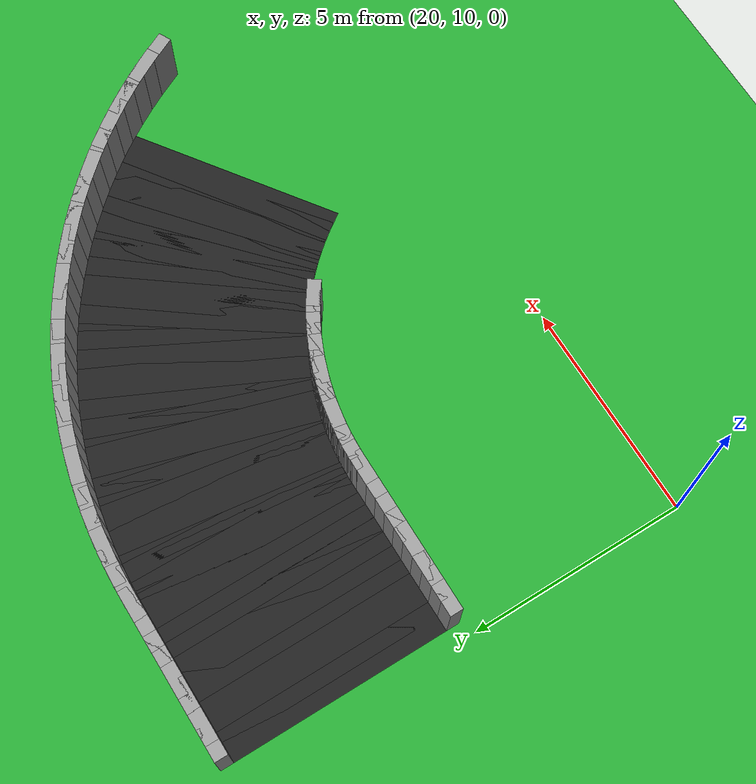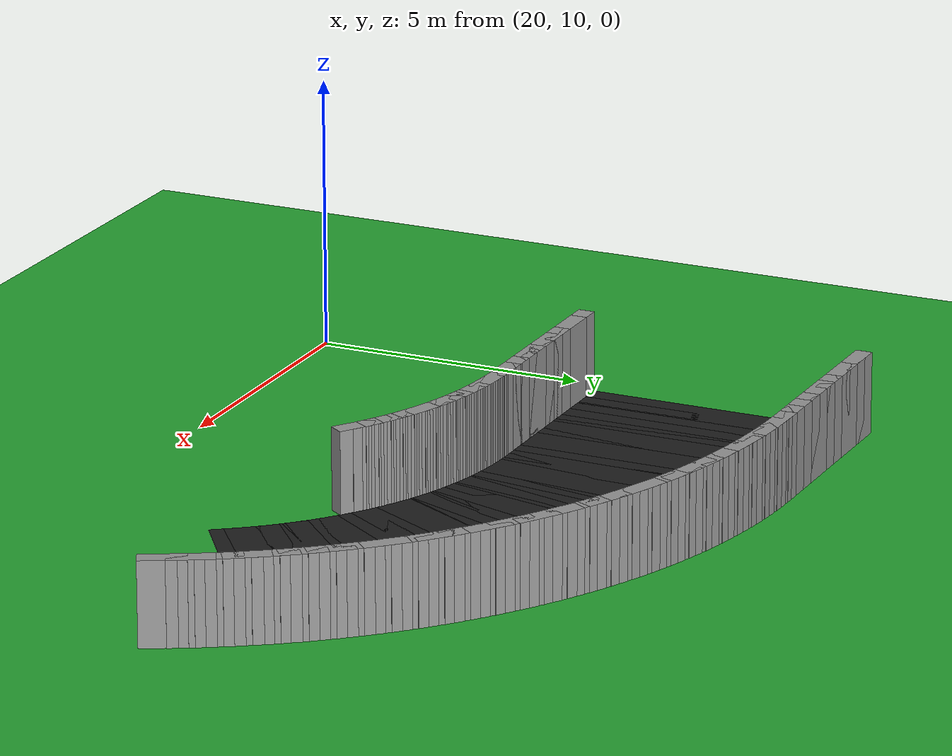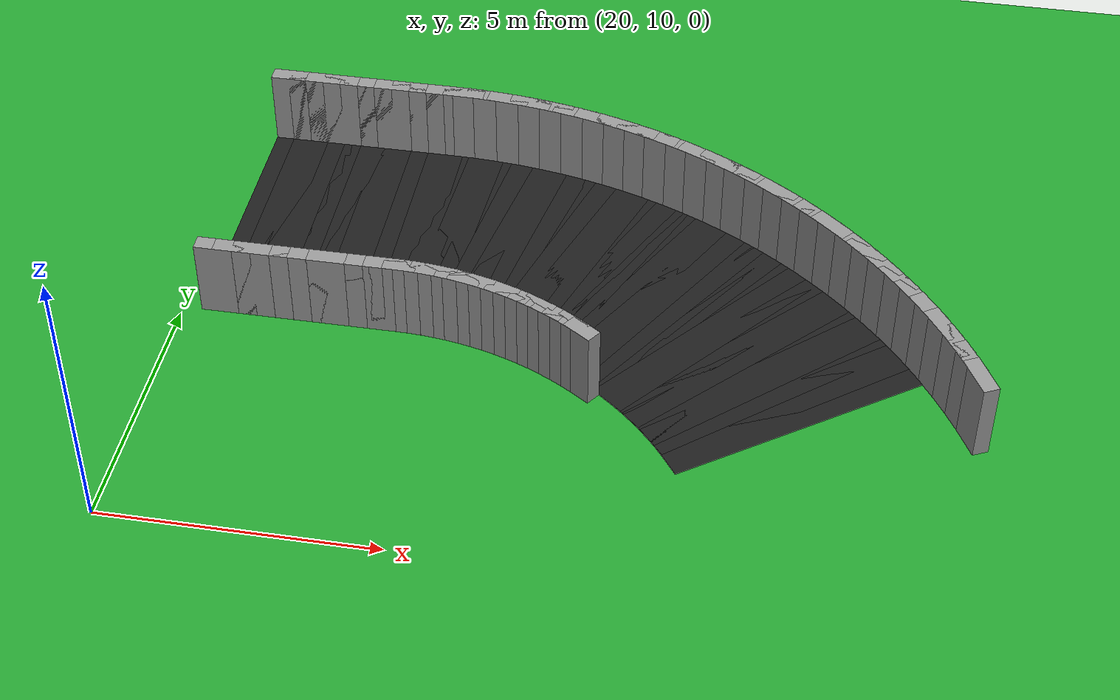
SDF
<sdf version="1.6">
 <world name="loop_stadium">
  <include><uri>model://sun</uri></include>
  <model name="ground_plane">
   <static>true</static>
   <link name="link">
    <collision name="collision">
     <surface><friction><ode><mu>100</mu><mu2>50</mu2></ode></friction></surface>
     <geometry><plane><normal>0 0 1</normal><size>120 120</size></plane></geometry>
    </collision>
    <visual name="visual">
     <geometry><plane><normal>0 0 1</normal><size>120 120</size></plane></geometry>
     <material>
      <script><uri>file://media/materials/scripts/gazebo.material</uri><name>Gazebo/Green</name></script>
     </material>
    </visual>
   </link>
  </model>
  <model name="curbR_121">
   <static>true</static>
   <pose>34.409 14.228 0.750 0 0 2.03622</pose>
   <link name="link">
    <collision name="collision"><geometry><box><size>0.812 0.300 1.500</size></box></geometry></collision>
    <visual name="visual">
     <geometry><box><size>0.812 0.300 1.500</size></box></geometry>
     <material>
      <script><uri>file://media/materials/scripts/gazebo.material</uri><name>Gazebo/Grey</name></script>
     </material>
    </visual>
   </link>
  </model>
  <model name="curbR_122">
   <static>true</static>
   <pose>34.199 14.628 0.750 0 0 2.07500</pose>
   <link name="link">
    <collision name="collision"><geometry><box><size>0.812 0.300 1.500</size></box></geometry></collision>
    <visual name="visual">
     <geometry><box><size>0.812 0.300 1.500</size></box></geometry>
     <material>
      <script><uri>file://media/materials/scripts/gazebo.material</uri><name>Gazebo/Grey</name></script>
     </material>
    </visual>
   </link>
  </model>
  <model name="curbR_123">
   <static>true</static>
   <pose>33.973 15.019 0.750 0 0 2.11379</pose>
   <link name="link">
    <collision name="collision"><geometry><box><size>0.812 0.300 1.500</size></box></geometry></collision>
    <visual name="visual">
     <geometry><box><size>0.812 0.300 1.500</size></box></geometry>
     <material>
      <script><uri>file://media/materials/scripts/gazebo.material</uri><name>Gazebo/Grey</name></script>
     </material>
    </visual>
   </link>
  </model>
  <model name="curbR_124">
   <static>true</static>
   <pose>33.732 15.401 0.750 0 0 2.15257</pose>
   <link name="link">
    <collision name="collision"><geometry><box><size>0.812 0.300 1.500</size></box></geometry></collision>
    <visual name="visual">
     <geometry><box><size>0.812 0.300 1.500</size></box></geometry>
     <material>
      <script><uri>file://media/materials/scripts/gazebo.material</uri><name>Gazebo/Grey</name></script>
     </material>
    </visual>
   </link>
  </model>
  <model name="asphalt_125">
   <static>true</static>
   <pose>31.321 14.233 0.005 0 0 2.19136</pose>
   <link name="link">
    <visual name="visual">
     <geometry><box><size>0.709 5.000 0.010</size></box></geometry>
     <material>
      <script><uri>file://media/materials/scripts/gazebo.material</uri><name>Gazebo/Black</name></script>
     </material>
    </visual>
   </link>
  </model>
  <model name="curbR_125">
   <static>true</static>
   <pose>33.477 15.774 0.750 0 0 2.19136</pose>
   <link name="link">
    <collision name="collision"><geometry><box><size>0.812 0.300 1.500</size></box></geometry></collision>
    <visual name="visual">
     <geometry><box><size>0.812 0.300 1.500</size></box></geometry>
     <material>
      <script><uri>file://media/materials/scripts/gazebo.material</uri><name>Gazebo/Grey</name></script>
     </material>
    </visual>
   </link>
  </model>
  <model name="asphalt_126">
   <static>true</static>
   <pose>31.113 14.513 0.005 0 0 2.23014</pose>
   <link name="link">
    <visual name="visual">
     <geometry><box><size>0.709 5.000 0.010</size></box></geometry>
     <material>
      <script><uri>file://media/materials/scripts/gazebo.material</uri><name>Gazebo/Black</name></script>
     </material>
    </visual>
   </link>
  </model>
  <model name="curbR_126">
   <static>true</static>
   <pose>33.207 16.136 0.750 0 0 2.23014</pose>
   <link name="link">
    <collision name="collision"><geometry><box><size>0.812 0.300 1.500</size></box></geometry></collision>
    <visual name="visual">
     <geometry><box><size>0.812 0.300 1.500</size></box></geometry>
     <material>
      <script><uri>file://media/materials/scripts/gazebo.material</uri><name>Gazebo/Grey</name></script>
     </material>
    </visual>
   </link>
  </model>
  <model name="asphalt_127">
   <static>true</static>
   <pose>30.894 14.785 0.005 0 0 2.26893</pose>
   <link name="link">
    <visual name="visual">
     <geometry><box><size>0.709 5.000 0.010</size></box></geometry>
     <material>
      <script><uri>file://media/materials/scripts/gazebo.material</uri><name>Gazebo/Black</name></script>
     </material>
    </visual>
   </link>
  </model>
  <model name="curbR_127">
   <static>true</static>
   <pose>32.923 16.488 0.750 0 0 2.26893</pose>
   <link name="link">
    <collision name="collision"><geometry><box><size>0.812 0.300 1.500</size></box></geometry></collision>
    <visual name="visual">
     <geometry><box><size>0.812 0.300 1.500</size></box></geometry>
     <material>
      <script><uri>file://media/materials/scripts/gazebo.material</uri><name>Gazebo/Grey</name></script>
     </material>
    </visual>
   </link>
  </model>
  <model name="asphalt_128">
   <static>true</static>
   <pose>30.664 15.048 0.005 0 0 2.30771</pose>
   <link name="link">
    <visual name="visual">
     <geometry><box><size>0.709 5.000 0.010</size></box></geometry>
     <material>
      <script><uri>file://media/materials/scripts/gazebo.material</uri><name>Gazebo/Black</name></script>
     </material>
    </visual>
   </link>
  </model>
  <model name="curbR_128">
   <static>true</static>
   <pose>32.626 16.828 0.750 0 0 2.30771</pose>
   <link name="link">
    <collision name="collision"><geometry><box><size>0.812 0.300 1.500</size></box></geometry></collision>
    <visual name="visual">
     <geometry><box><size>0.812 0.300 1.500</size></box></geometry>
     <material>
      <script><uri>file://media/materials/scripts/gazebo.material</uri><name>Gazebo/Grey</name></script>
     </material>
    </visual>
   </link>
  </model>
  <model name="asphalt_129">
   <static>true</static>
   <pose>30.425 15.302 0.005 0 0 2.34650</pose>
   <link name="link">
    <visual name="visual">
     <geometry><box><size>0.709 5.000 0.010</size></box></geometry>
     <material>
      <script><uri>file://media/materials/scripts/gazebo.material</uri><name>Gazebo/Black</name></script>
     </material>
    </visual>
   </link>
  </model>
  <model name="curbR_129">
   <static>true</static>
   <pose>32.316 17.157 0.750 0 0 2.34650</pose>
   <link name="link">
    <collision name="collision"><geometry><box><size>0.812 0.300 1.500</size></box></geometry></collision>
    <visual name="visual">
     <geometry><box><size>0.812 0.300 1.500</size></box></geometry>
     <material>
      <script><uri>file://media/materials/scripts/gazebo.material</uri><name>Gazebo/Grey</name></script>
     </material>
    </visual>
   </link>
  </model>
  <model name="asphalt_130">
   <static>true</static>
   <pose>30.175 15.546 0.005 0 0 2.38528</pose>
   <link name="link">
    <visual name="visual">
     <geometry><box><size>0.709 5.000 0.010</size></box></geometry>
     <material>
      <script><uri>file://media/materials/scripts/gazebo.material</uri><name>Gazebo/Black</name></script>
     </material>
    </visual>
   </link>
  </model>
  <model name="curbR_130">
   <static>true</static>
   <pose>31.994 17.473 0.750 0 0 2.38528</pose>
   <link name="link">
    <collision name="collision"><geometry><box><size>0.812 0.300 1.500</size></box></geometry></collision>
    <visual name="visual">
     <geometry><box><size>0.812 0.300 1.500</size></box></geometry>
     <material>
      <script><uri>file://media/materials/scripts/gazebo.material</uri><name>Gazebo/Grey</name></script>
     </material>
    </visual>
   </link>
  </model>
  <model name="asphalt_131">
   <static>true</static>
   <pose>29.917 15.781 0.005 0 0 2.42407</pose>
   <link name="link">
    <visual name="visual">
     <geometry><box><size>0.709 5.000 0.010</size></box></geometry>
     <material>
      <script><uri>file://media/materials/scripts/gazebo.material</uri><name>Gazebo/Black</name></script>
     </material>
    </visual>
   </link>
  </model>
  <model name="curbR_131">
   <static>true</static>
   <pose>31.659 17.777 0.750 0 0 2.42407</pose>
   <link name="link">
    <collision name="collision"><geometry><box><size>0.812 0.300 1.500</size></box></geometry></collision>
    <visual name="visual">
     <geometry><box><size>0.812 0.300 1.500</size></box></geometry>
     <material>
      <script><uri>file://media/materials/scripts/gazebo.material</uri><name>Gazebo/Grey</name></script>
     </material>
    </visual>
   </link>
  </model>
  <model name="asphalt_132">
   <static>true</static>
   <pose>29.650 16.005 0.005 0 0 2.46285</pose>
   <link name="link">
    <visual name="visual">
     <geometry><box><size>0.709 5.000 0.010</size></box></geometry>
     <material>
      <script><uri>file://media/materials/scripts/gazebo.material</uri><name>Gazebo/Black</name></script>
     </material>
    </visual>
   </link>
  </model>
  <model name="curbR_132">
   <static>true</static>
   <pose>31.313 18.067 0.750 0 0 2.46285</pose>
   <link name="link">
    <collision name="collision"><geometry><box><size>0.812 0.300 1.500</size></box></geometry></collision>
    <visual name="visual">
     <geometry><box><size>0.812 0.300 1.500</size></box></geometry>
     <material>
      <script><uri>file://media/materials/scripts/gazebo.material</uri><name>Gazebo/Grey</name></script>
     </material>
    </visual>
   </link>
  </model>
  <model name="asphalt_133">
   <static>true</static>
   <pose>29.374 16.219 0.005 0 0 2.50164</pose>
   <link name="link">
    <visual name="visual">
     <geometry><box><size>0.709 5.000 0.010</size></box></geometry>
     <material>
      <script><uri>file://media/materials/scripts/gazebo.material</uri><name>Gazebo/Black</name></script>
     </material>
    </visual>
   </link>
  </model>
  <model name="curbR_133">
   <static>true</static>
   <pose>30.956 18.344 0.750 0 0 2.50164</pose>
   <link name="link">
    <collision name="collision"><geometry><box><size>0.812 0.300 1.500</size></box></geometry></collision>
    <visual name="visual">
     <geometry><box><size>0.812 0.300 1.500</size></box></geometry>
     <material>
      <script><uri>file://media/materials/scripts/gazebo.material</uri><name>Gazebo/Grey</name></script>
     </material>
    </visual>
   </link>
  </model>
  <model name="asphalt_134">
   <static>true</static>
   <pose>29.090 16.422 0.005 0 0 2.54042</pose>
   <link name="link">
    <visual name="visual">
     <geometry><box><size>0.709 5.000 0.010</size></box></geometry>
     <material>
      <script><uri>file://media/materials/scripts/gazebo.material</uri><name>Gazebo/Black</name></script>
     </material>
    </visual>
   </link>
  </model>
  <model name="curbL_134">
   <static>true</static>
   <pose>27.591 14.237 0.750 0 0 2.54042</pose>
   <link name="link">
    <collision name="collision"><geometry><box><size>0.606 0.300 1.500</size></box></geometry></collision>
    <visual name="visual">
     <geometry><box><size>0.606 0.300 1.500</size></box></geometry>
     <material>
      <script><uri>file://media/materials/scripts/gazebo.material</uri><name>Gazebo/Grey</name></script>
     </material>
    </visual>
   </link>
  </model>
  <model name="curbR_134">
   <static>true</static>
   <pose>30.588 18.607 0.750 0 0 2.54042</pose>
   <link name="link">
    <collision name="collision"><geometry><box><size>0.812 0.300 1.500</size></box></geometry></collision>
    <visual name="visual">
     <geometry><box><size>0.812 0.300 1.500</size></box></geometry>
     <material>
      <script><uri>file://media/materials/scripts/gazebo.material</uri><name>Gazebo/Grey</name></script>
     </material>
    </visual>
   </link>
  </model>
  <model name="asphalt_135">
   <static>true</static>
   <pose>28.798 16.613 0.005 0 0 2.57921</pose>
   <link name="link">
    <visual name="visual">
     <geometry><box><size>0.709 5.000 0.010</size></box></geometry>
     <material>
      <script><uri>file://media/materials/scripts/gazebo.material</uri><name>Gazebo/Black</name></script>
     </material>
    </visual>
   </link>
  </model>
  <model name="curbL_135">
   <static>true</static>
   <pose>27.386 14.372 0.750 0 0 2.57921</pose>
   <link name="link">
    <collision name="collision"><geometry><box><size>0.606 0.300 1.500</size></box></geometry></collision>
    <visual name="visual">
     <geometry><box><size>0.606 0.300 1.500</size></box></geometry>
     <material>
      <script><uri>file://media/materials/scripts/gazebo.material</uri><name>Gazebo/Grey</name></script>
     </material>
    </visual>
   </link>
  </model>
  <model name="curbR_135">
   <static>true</static>
   <pose>30.211 18.855 0.750 0 0 2.57921</pose>
   <link name="link">
    <collision name="collision"><geometry><box><size>0.812 0.300 1.500</size></box></geometry></collision>
    <visual name="visual">
     <geometry><box><size>0.812 0.300 1.500</size></box></geometry>
     <material>
      <script><uri>file://media/materials/scripts/gazebo.material</uri><name>Gazebo/Grey</name></script>
     </material>
    </visual>
   </link>
  </model>
  <model name="asphalt_136">
   <static>true</static>
   <pose>28.499 16.794 0.005 0 0 2.61799</pose>
   <link name="link">
    <visual name="visual">
     <geometry><box><size>0.709 5.000 0.010</size></box></geometry>
     <material>
      <script><uri>file://media/materials/scripts/gazebo.material</uri><name>Gazebo/Black</name></script>
     </material>
    </visual>
   </link>
  </model>
  <model name="curbL_136">
   <static>true</static>
   <pose>27.175 14.499 0.750 0 0 2.61799</pose>
   <link name="link">
    <collision name="collision"><geometry><box><size>0.606 0.300 1.500</size></box></geometry></collision>
    <visual name="visual">
     <geometry><box><size>0.606 0.300 1.500</size></box></geometry>
     <material>
      <script><uri>file://media/materials/scripts/gazebo.material</uri><name>Gazebo/Grey</name></script>
     </material>
    </visual>
   </link>
  </model>
  <model name="curbR_136">
   <static>true</static>
   <pose>29.824 19.088 0.750 0 0 2.61799</pose>
   <link name="link">
    <collision name="collision"><geometry><box><size>0.812 0.300 1.500</size></box></geometry></collision>
    <visual name="visual">
     <geometry><box><size>0.812 0.300 1.500</size></box></geometry>
     <material>
      <script><uri>file://media/materials/scripts/gazebo.material</uri><name>Gazebo/Grey</name></script>
     </material>
    </visual>
   </link>
  </model>
  <model name="asphalt_137">
   <static>true</static>
   <pose>28.194 16.962 0.005 0 0 2.65678</pose>
   <link name="link">
    <visual name="visual">
     <geometry><box><size>0.709 5.000 0.010</size></box></geometry>
     <material>
      <script><uri>file://media/materials/scripts/gazebo.material</uri><name>Gazebo/Black</name></script>
     </material>
    </visual>
   </link>
  </model>
  <model name="curbL_137">
   <static>true</static>
   <pose>26.959 14.618 0.750 0 0 2.65678</pose>
   <link name="link">
    <collision name="collision"><geometry><box><size>0.606 0.300 1.500</size></box></geometry></collision>
    <visual name="visual">
     <geometry><box><size>0.606 0.300 1.500</size></box></geometry>
     <material>
      <script><uri>file://media/materials/scripts/gazebo.material</uri><name>Gazebo/Grey</name></script>
     </material>
    </visual>
   </link>
  </model>
  <model name="curbR_137">
   <static>true</static>
   <pose>29.429 19.307 0.750 0 0 2.65678</pose>
   <link name="link">
    <collision name="collision"><geometry><box><size>0.812 0.300 1.500</size></box></geometry></collision>
    <visual name="visual">
     <geometry><box><size>0.812 0.300 1.500</size></box></geometry>
     <material>
      <script><uri>file://media/materials/scripts/gazebo.material</uri><name>Gazebo/Grey</name></script>
     </material>
    </visual>
   </link>
  </model>
  <model name="asphalt_138">
   <static>true</static>
   <pose>27.882 17.119 0.005 0 0 2.69556</pose>
   <link name="link">
    <visual name="visual">
     <geometry><box><size>0.709 5.000 0.010</size></box></geometry>
     <material>
      <script><uri>file://media/materials/scripts/gazebo.material</uri><name>Gazebo/Black</name></script>
     </material>
    </visual>
   </link>
  </model>
  <model name="curbL_138">
   <static>true</static>
   <pose>26.739 14.729 0.750 0 0 2.69556</pose>
   <link name="link">
    <collision name="collision"><geometry><box><size>0.606 0.300 1.500</size></box></geometry></collision>
    <visual name="visual">
     <geometry><box><size>0.606 0.300 1.500</size></box></geometry>
     <material>
      <script><uri>file://media/materials/scripts/gazebo.material</uri><name>Gazebo/Grey</name></script>
     </material>
    </visual>
   </link>
  </model>
  <model name="curbR_138">
   <static>true</static>
   <pose>29.025 19.509 0.750 0 0 2.69556</pose>
   <link name="link">
    <collision name="collision"><geometry><box><size>0.812 0.300 1.500</size></box></geometry></collision>
    <visual name="visual">
     <geometry><box><size>0.812 0.300 1.500</size></box></geometry>
     <material>
      <script><uri>file://media/materials/scripts/gazebo.material</uri><name>Gazebo/Grey</name></script>
     </material>
    </visual>
   </link>
  </model>
  <model name="asphalt_139">
   <static>true</static>
   <pose>27.564 17.263 0.005 0 0 2.73435</pose>
   <link name="link">
    <visual name="visual">
     <geometry><box><size>0.709 5.000 0.010</size></box></geometry>
     <material>
      <script><uri>file://media/materials/scripts/gazebo.material</uri><name>Gazebo/Black</name></script>
     </material>
    </visual>
   </link>
  </model>
  <model name="curbL_139">
   <static>true</static>
   <pose>26.515 14.831 0.750 0 0 2.73435</pose>
   <link name="link">
    <collision name="collision"><geometry><box><size>0.606 0.300 1.500</size></box></geometry></collision>
    <visual name="visual">
     <geometry><box><size>0.606 0.300 1.500</size></box></geometry>
     <material>
      <script><uri>file://media/materials/scripts/gazebo.material</uri><name>Gazebo/Grey</name></script>
     </material>
    </visual>
   </link>
  </model>
  <model name="curbR_139">
   <static>true</static>
   <pose>28.614 19.696 0.750 0 0 2.73435</pose>
   <link name="link">
    <collision name="collision"><geometry><box><size>0.812 0.300 1.500</size></box></geometry></collision>
    <visual name="visual">
     <geometry><box><size>0.812 0.300 1.500</size></box></geometry>
     <material>
      <script><uri>file://media/materials/scripts/gazebo.material</uri><name>Gazebo/Grey</name></script>
     </material>
    </visual>
   </link>
  </model>
  <model name="asphalt_140">
   <static>true</static>
   <pose>27.241 17.395 0.005 0 0 2.77313</pose>
   <link name="link">
    <visual name="visual">
     <geometry><box><size>0.709 5.000 0.010</size></box></geometry>
     <material>
      <script><uri>file://media/materials/scripts/gazebo.material</uri><name>Gazebo/Black</name></script>
     </material>
    </visual>
   </link>
  </model>
  <model name="curbL_140">
   <static>true</static>
   <pose>26.287 14.924 0.750 0 0 2.77313</pose>
   <link name="link">
    <collision name="collision"><geometry><box><size>0.606 0.300 1.500</size></box></geometry></collision>
    <visual name="visual">
     <geometry><box><size>0.606 0.300 1.500</size></box></geometry>
     <material>
      <script><uri>file://media/materials/scripts/gazebo.material</uri><name>Gazebo/Grey</name></script>
     </material>
    </visual>
   </link>
  </model>
  <model name="curbR_140">
   <static>true</static>
   <pose>28.195 19.867 0.750 0 0 2.77313</pose>
   <link name="link">
    <collision name="collision"><geometry><box><size>0.812 0.300 1.500</size></box></geometry></collision>
    <visual name="visual">
     <geometry><box><size>0.812 0.300 1.500</size></box></geometry>
     <material>
      <script><uri>file://media/materials/scripts/gazebo.material</uri><name>Gazebo/Grey</name></script>
     </material>
    </visual>
   </link>
  </model>
  <model name="asphalt_141">
   <static>true</static>
   <pose>26.913 17.515 0.005 0 0 2.81192</pose>
   <link name="link">
    <visual name="visual">
     <geometry><box><size>0.709 5.000 0.010</size></box></geometry>
     <material>
      <script><uri>file://media/materials/scripts/gazebo.material</uri><name>Gazebo/Black</name></script>
     </material>
    </visual>
   </link>
  </model>
  <model name="curbL_141">
   <static>true</static>
   <pose>26.056 15.008 0.750 0 0 2.81192</pose>
   <link name="link">
    <collision name="collision"><geometry><box><size>0.606 0.300 1.500</size></box></geometry></collision>
    <visual name="visual">
     <geometry><box><size>0.606 0.300 1.500</size></box></geometry>
     <material>
      <script><uri>file://media/materials/scripts/gazebo.material</uri><name>Gazebo/Grey</name></script>
     </material>
    </visual>
   </link>
  </model>
  <model name="curbR_141">
   <static>true</static>
   <pose>27.771 20.022 0.750 0 0 2.81192</pose>
   <link name="link">
    <collision name="collision"><geometry><box><size>0.812 0.300 1.500</size></box></geometry></collision>
    <visual name="visual">
     <geometry><box><size>0.812 0.300 1.500</size></box></geometry>
     <material>
      <script><uri>file://media/materials/scripts/gazebo.material</uri><name>Gazebo/Grey</name></script>
     </material>
    </visual>
   </link>
  </model>
  <model name="asphalt_142">
   <static>true</static>
   <pose>26.581 17.621 0.005 0 0 2.85070</pose>
   <link name="link">
    <visual name="visual">
     <geometry><box><size>0.709 5.000 0.010</size></box></geometry>
     <material>
      <script><uri>file://media/materials/scripts/gazebo.material</uri><name>Gazebo/Black</name></script>
     </material>
    </visual>
   </link>
  </model>
  <model name="curbL_142">
   <static>true</static>
   <pose>25.821 15.083 0.750 0 0 2.85070</pose>
   <link name="link">
    <collision name="collision"><geometry><box><size>0.606 0.300 1.500</size></box></geometry></collision>
    <visual name="visual">
     <geometry><box><size>0.606 0.300 1.500</size></box></geometry>
     <material>
      <script><uri>file://media/materials/scripts/gazebo.material</uri><name>Gazebo/Grey</name></script>
     </material>
    </visual>
   </link>
  </model>
  <model name="curbR_142">
   <static>true</static>
   <pose>27.341 20.160 0.750 0 0 2.85070</pose>
   <link name="link">
    <collision name="collision"><geometry><box><size>0.812 0.300 1.500</size></box></geometry></collision>
    <visual name="visual">
     <geometry><box><size>0.812 0.300 1.500</size></box></geometry>
     <material>
      <script><uri>file://media/materials/scripts/gazebo.material</uri><name>Gazebo/Grey</name></script>
     </material>
    </visual>
   </link>
  </model>
  <model name="asphalt_143">
   <static>true</static>
   <pose>26.245 17.715 0.005 0 0 2.88949</pose>
   <link name="link">
    <visual name="visual">
     <geometry><box><size>0.709 5.000 0.010</size></box></geometry>
     <material>
      <script><uri>file://media/materials/scripts/gazebo.material</uri><name>Gazebo/Black</name></script>
     </material>
    </visual>
   </link>
  </model>
  <model name="curbL_143">
   <static>true</static>
   <pose>25.584 15.149 0.750 0 0 2.88949</pose>
   <link name="link">
    <collision name="collision"><geometry><box><size>0.606 0.300 1.500</size></box></geometry></collision>
    <visual name="visual">
     <geometry><box><size>0.606 0.300 1.500</size></box></geometry>
     <material>
      <script><uri>file://media/materials/scripts/gazebo.material</uri><name>Gazebo/Grey</name></script>
     </material>
    </visual>
   </link>
  </model>
  <model name="curbR_143">
   <static>true</static>
   <pose>26.906 20.281 0.750 0 0 2.88949</pose>
   <link name="link">
    <collision name="collision"><geometry><box><size>0.812 0.300 1.500</size></box></geometry></collision>
    <visual name="visual">
     <geometry><box><size>0.812 0.300 1.500</size></box></geometry>
     <material>
      <script><uri>file://media/materials/scripts/gazebo.material</uri><name>Gazebo/Grey</name></script>
     </material>
    </visual>
   </link>
  </model>
  <model name="asphalt_144">
   <static>true</static>
   <pose>25.905 17.795 0.005 0 0 2.92827</pose>
   <link name="link">
    <visual name="visual">
     <geometry><box><size>0.709 5.000 0.010</size></box></geometry>
     <material>
      <script><uri>file://media/materials/scripts/gazebo.material</uri><name>Gazebo/Black</name></script>
     </material>
    </visual>
   </link>
  </model>
  <model name="curbL_144">
   <static>true</static>
   <pose>25.344 15.206 0.750 0 0 2.92827</pose>
   <link name="link">
    <collision name="collision"><geometry><box><size>0.606 0.300 1.500</size></box></geometry></collision>
    <visual name="visual">
     <geometry><box><size>0.606 0.300 1.500</size></box></geometry>
     <material>
      <script><uri>file://media/materials/scripts/gazebo.material</uri><name>Gazebo/Grey</name></script>
     </material>
    </visual>
   </link>
  </model>
  <model name="curbR_144">
   <static>true</static>
   <pose>26.466 20.385 0.750 0 0 2.92827</pose>
   <link name="link">
    <collision name="collision"><geometry><box><size>0.812 0.300 1.500</size></box></geometry></collision>
    <visual name="visual">
     <geometry><box><size>0.812 0.300 1.500</size></box></geometry>
     <material>
      <script><uri>file://media/materials/scripts/gazebo.material</uri><name>Gazebo/Grey</name></script>
     </material>
    </visual>
   </link>
  </model>
  <model name="asphalt_145">
   <static>true</static>
   <pose>25.563 17.863 0.005 0 0 2.96706</pose>
   <link name="link">
    <visual name="visual">
     <geometry><box><size>0.709 5.000 0.010</size></box></geometry>
     <material>
      <script><uri>file://media/materials/scripts/gazebo.material</uri><name>Gazebo/Black</name></script>
     </material>
    </visual>
   </link>
  </model>
  <model name="curbL_145">
   <static>true</static>
   <pose>25.103 15.253 0.750 0 0 2.96706</pose>
   <link name="link">
    <collision name="collision"><geometry><box><size>0.606 0.300 1.500</size></box></geometry></collision>
    <visual name="visual">
     <geometry><box><size>0.606 0.300 1.500</size></box></geometry>
     <material>
      <script><uri>file://media/materials/scripts/gazebo.material</uri><name>Gazebo/Grey</name></script>
     </material>
    </visual>
   </link>
  </model>
  <model name="curbR_145">
   <static>true</static>
   <pose>26.023 20.472 0.750 0 0 2.96706</pose>
   <link name="link">
    <collision name="collision"><geometry><box><size>0.812 0.300 1.500</size></box></geometry></collision>
    <visual name="visual">
     <geometry><box><size>0.812 0.300 1.500</size></box></geometry>
     <material>
      <script><uri>file://media/materials/scripts/gazebo.material</uri><name>Gazebo/Grey</name></script>
     </material>
    </visual>
   </link>
  </model>
  <model name="asphalt_146">
   <static>true</static>
   <pose>25.218 17.917 0.005 0 0 3.00584</pose>
   <link name="link">
    <visual name="visual">
     <geometry><box><size>0.709 5.000 0.010</size></box></geometry>
     <material>
      <script><uri>file://media/materials/scripts/gazebo.material</uri><name>Gazebo/Black</name></script>
     </material>
    </visual>
   </link>
  </model>
  <model name="curbL_146">
   <static>true</static>
   <pose>24.859 15.292 0.750 0 0 3.00584</pose>
   <link name="link">
    <collision name="collision"><geometry><box><size>0.606 0.300 1.500</size></box></geometry></collision>
    <visual name="visual">
     <geometry><box><size>0.606 0.300 1.500</size></box></geometry>
     <material>
      <script><uri>file://media/materials/scripts/gazebo.material</uri><name>Gazebo/Grey</name></script>
     </material>
    </visual>
   </link>
  </model>
  <model name="curbR_146">
   <static>true</static>
   <pose>25.576 20.542 0.750 0 0 3.00584</pose>
   <link name="link">
    <collision name="collision"><geometry><box><size>0.812 0.300 1.500</size></box></geometry></collision>
    <visual name="visual">
     <geometry><box><size>0.812 0.300 1.500</size></box></geometry>
     <material>
      <script><uri>file://media/materials/scripts/gazebo.material</uri><name>Gazebo/Grey</name></script>
     </material>
    </visual>
   </link>
  </model>
  <model name="asphalt_147">
   <static>true</static>
   <pose>24.871 17.957 0.005 0 0 3.04463</pose>
   <link name="link">
    <visual name="visual">
     <geometry><box><size>0.709 5.000 0.010</size></box></geometry>
     <material>
      <script><uri>file://media/materials/scripts/gazebo.material</uri><name>Gazebo/Black</name></script>
     </material>
    </visual>
   </link>
  </model>
  <model name="curbL_147">
   <static>true</static>
   <pose>24.615 15.320 0.750 0 0 3.04463</pose>
   <link name="link">
    <collision name="collision"><geometry><box><size>0.606 0.300 1.500</size></box></geometry></collision>
    <visual name="visual">
     <geometry><box><size>0.606 0.300 1.500</size></box></geometry>
     <material>
      <script><uri>file://media/materials/scripts/gazebo.material</uri><name>Gazebo/Grey</name></script>
     </material>
    </visual>
   </link>
  </model>
  <model name="curbR_147">
   <static>true</static>
   <pose>25.128 20.594 0.750 0 0 3.04463</pose>
   <link name="link">
    <collision name="collision"><geometry><box><size>0.812 0.300 1.500</size></box></geometry></collision>
    <visual name="visual">
     <geometry><box><size>0.812 0.300 1.500</size></box></geometry>
     <material>
      <script><uri>file://media/materials/scripts/gazebo.material</uri><name>Gazebo/Grey</name></script>
     </material>
    </visual>
   </link>
  </model>
  <model name="asphalt_148">
   <static>true</static>
   <pose>24.523 17.984 0.005 0 0 3.08342</pose>
   <link name="link">
    <visual name="visual">
     <geometry><box><size>0.709 5.000 0.010</size></box></geometry>
     <material>
      <script><uri>file://media/materials/scripts/gazebo.material</uri><name>Gazebo/Black</name></script>
     </material>
    </visual>
   </link>
  </model>
  <model name="curbL_148">
   <static>true</static>
   <pose>24.369 15.339 0.750 0 0 3.08342</pose>
   <link name="link">
    <collision name="collision"><geometry><box><size>0.606 0.300 1.500</size></box></geometry></collision>
    <visual name="visual">
     <geometry><box><size>0.606 0.300 1.500</size></box></geometry>
     <material>
      <script><uri>file://media/materials/scripts/gazebo.material</uri><name>Gazebo/Grey</name></script>
     </material>
    </visual>
   </link>
  </model>
  <model name="curbR_148">
   <static>true</static>
   <pose>24.677 20.629 0.750 0 0 3.08342</pose>
   <link name="link">
    <collision name="collision"><geometry><box><size>0.812 0.300 1.500</size></box></geometry></collision>
    <visual name="visual">
     <geometry><box><size>0.812 0.300 1.500</size></box></geometry>
     <material>
      <script><uri>file://media/materials/scripts/gazebo.material</uri><name>Gazebo/Grey</name></script>
     </material>
    </visual>
   </link>
  </model>
  <model name="asphalt_149">
   <static>true</static>
   <pose>24.175 17.998 0.005 0 0 3.12220</pose>
   <link name="link">
    <visual name="visual">
     <geometry><box><size>0.709 5.000 0.010</size></box></geometry>
     <material>
      <script><uri>file://media/materials/scripts/gazebo.material</uri><name>Gazebo/Black</name></script>
     </material>
    </visual>
   </link>
  </model>
  <model name="curbL_149">
   <static>true</static>
   <pose>24.123 15.349 0.750 0 0 3.12220</pose>
   <link name="link">
    <collision name="collision"><geometry><box><size>0.606 0.300 1.500</size></box></geometry></collision>
    <visual name="visual">
     <geometry><box><size>0.606 0.300 1.500</size></box></geometry>
     <material>
      <script><uri>file://media/materials/scripts/gazebo.material</uri><name>Gazebo/Grey</name></script>
     </material>
    </visual>
   </link>
  </model>
  <model name="curbR_149">
   <static>true</static>
   <pose>24.226 20.647 0.750 0 0 3.12220</pose>
   <link name="link">
    <collision name="collision"><geometry><box><size>0.812 0.300 1.500</size></box></geometry></collision>
    <visual name="visual">
     <geometry><box><size>0.812 0.300 1.500</size></box></geometry>
     <material>
      <script><uri>file://media/materials/scripts/gazebo.material</uri><name>Gazebo/Grey</name></script>
     </material>
    </visual>
   </link>
  </model>
  <model name="asphalt_150">
   <static>true</static>
   <pose>23.826 18.001 0.005 0 0 3.14159</pose>
   <link name="link">
    <visual name="visual">
     <geometry><box><size>0.708 5.000 0.010</size></box></geometry>
     <material>
      <script><uri>file://media/materials/scripts/gazebo.material</uri><name>Gazebo/Black</name></script>
     </material>
    </visual>
   </link>
  </model>
  <model name="curbL_150">
   <static>true</static>
   <pose>23.826 15.351 0.750 0 0 3.14159</pose>
   <link name="link">
    <collision name="collision"><geometry><box><size>0.708 0.300 1.500</size></box></geometry></collision>
    <visual name="visual">
     <geometry><box><size>0.708 0.300 1.500</size></box></geometry>
     <material>
      <script><uri>file://media/materials/scripts/gazebo.material</uri><name>Gazebo/Grey</name></script>
     </material>
    </visual>
   </link>
  </model>
  <model name="curbR_150">
   <static>true</static>
   <pose>23.826 20.651 0.750 0 0 3.14159</pose>
   <link name="link">
    <collision name="collision"><geometry><box><size>0.708 0.300 1.500</size></box></geometry></collision>
    <visual name="visual">
     <geometry><box><size>0.708 0.300 1.500</size></box></geometry>
     <material>
      <script><uri>file://media/materials/scripts/gazebo.material</uri><name>Gazebo/Grey</name></script>
     </material>
    </visual>
   </link>
  </model>
  <model name="asphalt_151">
   <static>true</static>
   <pose>23.478 18.001 0.005 0 0 3.14159</pose>
   <link name="link">
    <visual name="visual">
     <geometry><box><size>0.708 5.000 0.010</size></box></geometry>
     <material>
      <script><uri>file://media/materials/scripts/gazebo.material</uri><name>Gazebo/Black</name></script>
     </material>
    </visual>
   </link>
  </model>
  <model name="curbL_151">
   <static>true</static>
   <pose>23.478 15.351 0.750 0 0 3.14159</pose>
   <link name="link">
    <collision name="collision"><geometry><box><size>0.708 0.300 1.500</size></box></geometry></collision>
    <visual name="visual">
     <geometry><box><size>0.708 0.300 1.500</size></box></geometry>
     <material>
      <script><uri>file://media/materials/scripts/gazebo.material</uri><name>Gazebo/Grey</name></script>
     </material>
    </visual>
   </link>
  </model>
  <model name="curbR_151">
   <static>true</static>
   <pose>23.478 20.651 0.750 0 0 3.14159</pose>
   <link name="link">
    <collision name="collision"><geometry><box><size>0.708 0.300 1.500</size></box></geometry></collision>
    <visual name="visual">
     <geometry><box><size>0.708 0.300 1.500</size></box></geometry>
     <material>
      <script><uri>file://media/materials/scripts/gazebo.material</uri><name>Gazebo/Grey</name></script>
     </material>
    </visual>
   </link>
  </model>
  <model name="asphalt_152">
   <static>true</static>
   <pose>23.130 18.001 0.005 0 0 3.14159</pose>
   <link name="link">
    <visual name="visual">
     <geometry><box><size>0.708 5.000 0.010</size></box></geometry>
     <material>
      <script><uri>file://media/materials/scripts/gazebo.material</uri><name>Gazebo/Black</name></script>
     </material>
    </visual>
   </link>
  </model>
  <model name="curbL_152">
   <static>true</static>
   <pose>23.130 15.351 0.750 0 0 3.14159</pose>
   <link name="link">
    <collision name="collision"><geometry><box><size>0.708 0.300 1.500</size></box></geometry></collision>
    <visual name="visual">
     <geometry><box><size>0.708 0.300 1.500</size></box></geometry>
     <material>
      <script><uri>file://media/materials/scripts/gazebo.material</uri><name>Gazebo/Grey</name></script>
     </material>
    </visual>
   </link>
  </model>
  <model name="curbR_152">
   <static>true</static>
   <pose>23.130 20.651 0.750 0 0 3.14159</pose>
   <link name="link">
    <collision name="collision"><geometry><box><size>0.708 0.300 1.500</size></box></geometry></collision>
    <visual name="visual">
     <geometry><box><size>0.708 0.300 1.500</size></box></geometry>
     <material>
      <script><uri>file://media/materials/scripts/gazebo.material</uri><name>Gazebo/Grey</name></script>
     </material>
    </visual>
   </link>
  </model>
  <model name="asphalt_153">
   <static>true</static>
   <pose>22.783 18.001 0.005 0 0 3.14159</pose>
   <link name="link">
    <visual name="visual">
     <geometry><box><size>0.708 5.000 0.010</size></box></geometry>
     <material>
      <script><uri>file://media/materials/scripts/gazebo.material</uri><name>Gazebo/Black</name></script>
     </material>
    </visual>
   </link>
  </model>
  <model name="curbL_153">
   <static>true</static>
   <pose>22.783 15.351 0.750 0 0 3.14159</pose>
   <link name="link">
    <collision name="collision"><geometry><box><size>0.708 0.300 1.500</size></box></geometry></collision>
    <visual name="visual">
     <geometry><box><size>0.708 0.300 1.500</size></box></geometry>
     <material>
      <script><uri>file://media/materials/scripts/gazebo.material</uri><name>Gazebo/Grey</name></script>
     </material>
    </visual>
   </link>
  </model>
  <model name="curbR_153">
   <static>true</static>
   <pose>22.783 20.651 0.750 0 0 3.14159</pose>
   <link name="link">
    <collision name="collision"><geometry><box><size>0.708 0.300 1.500</size></box></geometry></collision>
    <visual name="visual">
     <geometry><box><size>0.708 0.300 1.500</size></box></geometry>
     <material>
      <script><uri>file://media/materials/scripts/gazebo.material</uri><name>Gazebo/Grey</name></script>
     </material>
    </visual>
   </link>
  </model>
  <model name="asphalt_154">
   <static>true</static>
   <pose>22.435 18.001 0.005 0 0 3.14159</pose>
   <link name="link">
    <visual name="visual">
     <geometry><box><size>0.708 5.000 0.010</size></box></geometry>
     <material>
      <script><uri>file://media/materials/scripts/gazebo.material</uri><name>Gazebo/Black</name></script>
     </material>
    </visual>
   </link>
  </model>
  <model name="curbL_154">
   <static>true</static>
   <pose>22.435 15.351 0.750 0 0 3.14159</pose>
   <link name="link">
    <collision name="collision"><geometry><box><size>0.708 0.300 1.500</size></box></geometry></collision>
    <visual name="visual">
     <geometry><box><size>0.708 0.300 1.500</size></box></geometry>
     <material>
      <script><uri>file://media/materials/scripts/gazebo.material</uri><name>Gazebo/Grey</name></script>
     </material>
    </visual>
   </link>
  </model>
  <model name="curbR_154">
   <static>true</static>
   <pose>22.435 20.651 0.750 0 0 3.14159</pose>
   <link name="link">
    <collision name="collision"><geometry><box><size>0.708 0.300 1.500</size></box></geometry></collision>
    <visual name="visual">
     <geometry><box><size>0.708 0.300 1.500</size></box></geometry>
     <material>
      <script><uri>file://media/materials/scripts/gazebo.material</uri><name>Gazebo/Grey</name></script>
     </material>
    </visual>
   </link>
  </model>
  <model name="asphalt_155">
   <static>true</static>
   <pose>22.087 18.001 0.005 0 0 3.14159</pose>
   <link name="link">
    <visual name="visual">
     <geometry><box><size>0.708 5.000 0.010</size></box></geometry>
     <material>
      <script><uri>file://media/materials/scripts/gazebo.material</uri><name>Gazebo/Black</name></script>
     </material>
    </visual>
   </link>
  </model>
  <model name="curbL_155">
   <static>true</static>
   <pose>22.087 15.351 0.750 0 0 3.14159</pose>
   <link name="link">
    <collision name="collision"><geometry><box><size>0.708 0.300 1.500</size></box></geometry></collision>
    <visual name="visual">
     <geometry><box><size>0.708 0.300 1.500</size></box></geometry>
     <material>
      <script><uri>file://media/materials/scripts/gazebo.material</uri><name>Gazebo/Grey</name></script>
     </material>
    </visual>
   </link>
  </model>
  <model name="curbR_155">
   <static>true</static>
   <pose>22.087 20.651 0.750 0 0 3.14159</pose>
   <link name="link">
    <collision name="collision"><geometry><box><size>0.708 0.300 1.500</size></box></geometry></collision>
    <visual name="visual">
     <geometry><box><size>0.708 0.300 1.500</size></box></geometry>
     <material>
      <script><uri>file://media/materials/scripts/gazebo.material</uri><name>Gazebo/Grey</name></script>
     </material>
    </visual>
   </link>
  </model>
  <model name="asphalt_156">
   <static>true</static>
   <pose>21.739 18.001 0.005 0 0 3.14159</pose>
   <link name="link">
    <visual name="visual">
     <geometry><box><size>0.708 5.000 0.010</size></box></geometry>
     <material>
      <script><uri>file://media/materials/scripts/gazebo.material</uri><name>Gazebo/Black</name></script>
     </material>
    </visual>
   </link>
  </model>
  <model name="curbL_156">
   <static>true</static>
   <pose>21.739 15.351 0.750 0 0 3.14159</pose>
   <link name="link">
    <collision name="collision"><geometry><box><size>0.708 0.300 1.500</size></box></geometry></collision>
    <visual name="visual">
     <geometry><box><size>0.708 0.300 1.500</size></box></geometry>
     <material>
      <script><uri>file://media/materials/scripts/gazebo.material</uri><name>Gazebo/Grey</name></script>
     </material>
    </visual>
   </link>
  </model>
  <model name="curbR_156">
   <static>true</static>
   <pose>21.739 20.651 0.750 0 0 3.14159</pose>
   <link name="link">
    <collision name="collision"><geometry><box><size>0.708 0.300 1.500</size></box></geometry></collision>
    <visual name="visual">
     <geometry><box><size>0.708 0.300 1.500</size></box></geometry>
     <material>
      <script><uri>file://media/materials/scripts/gazebo.material</uri><name>Gazebo/Grey</name></script>
     </material>
    </visual>
   </link>
  </model>
  <model name="asphalt_157">
   <static>true</static>
   <pose>21.391 18.001 0.005 0 0 3.14159</pose>
   <link name="link">
    <visual name="visual">
     <geometry><box><size>0.708 5.000 0.010</size></box></geometry>
     <material>
      <script><uri>file://media/materials/scripts/gazebo.material</uri><name>Gazebo/Black</name></script>
     </material>
    </visual>
   </link>
  </model>
  <model name="curbL_157">
   <static>true</static>
   <pose>21.391 15.351 0.750 0 0 3.14159</pose>
   <link name="link">
    <collision name="collision"><geometry><box><size>0.708 0.300 1.500</size></box></geometry></collision>
    <visual name="visual">
     <geometry><box><size>0.708 0.300 1.500</size></box></geometry>
     <material>
      <script><uri>file://media/materials/scripts/gazebo.material</uri><name>Gazebo/Grey</name></script>
     </material>
    </visual>
   </link>
  </model>
  <model name="curbR_157">
   <static>true</static>
   <pose>21.391 20.651 0.750 0 0 3.14159</pose>
   <link name="link">
    <collision name="collision"><geometry><box><size>0.708 0.300 1.500</size></box></geometry></collision>
    <visual name="visual">
     <geometry><box><size>0.708 0.300 1.500</size></box></geometry>
     <material>
      <script><uri>file://media/materials/scripts/gazebo.material</uri><name>Gazebo/Grey</name></script>
     </material>
    </visual>
   </link>
  </model>
  <model name="asphalt_158">
   <static>true</static>
   <pose>21.043 18.001 0.005 0 0 3.14159</pose>
   <link name="link">
    <visual name="visual">
     <geometry><box><size>0.708 5.000 0.010</size></box></geometry>
     <material>
      <script><uri>file://media/materials/scripts/gazebo.material</uri><name>Gazebo/Black</name></script>
     </material>
    </visual>
   </link>
  </model>
  <model name="curbL_158">
   <static>true</static>
   <pose>21.043 15.351 0.750 0 0 3.14159</pose>
   <link name="link">
    <collision name="collision"><geometry><box><size>0.708 0.300 1.500</size></box></geometry></collision>
    <visual name="visual">
     <geometry><box><size>0.708 0.300 1.500</size></box></geometry>
     <material>
      <script><uri>file://media/materials/scripts/gazebo.material</uri><name>Gazebo/Grey</name></script>
     </material>
    </visual>
   </link>
  </model>
  <model name="curbR_158">
   <static>true</static>
   <pose>21.043 20.651 0.750 0 0 3.14159</pose>
   <link name="link">
    <collision name="collision"><geometry><box><size>0.708 0.300 1.500</size></box></geometry></collision>
    <visual name="visual">
     <geometry><box><size>0.708 0.300 1.500</size></box></geometry>
     <material>
      <script><uri>file://media/materials/scripts/gazebo.material</uri><name>Gazebo/Grey</name></script>
     </material>
    </visual>
   </link>
  </model>
  <model name="asphalt_159">
   <static>true</static>
   <pose>20.696 18.001 0.005 0 0 3.14159</pose>
   <link name="link">
    <visual name="visual">
     <geometry><box><size>0.708 5.000 0.010</size></box></geometry>
     <material>
      <script><uri>file://media/materials/scripts/gazebo.material</uri><name>Gazebo/Black</name></script>
     </material>
    </visual>
   </link>
  </model>
  <model name="curbL_159">
   <static>true</static>
   <pose>20.696 15.351 0.750 0 0 3.14159</pose>
   <link name="link">
    <collision name="collision"><geometry><box><size>0.708 0.300 1.500</size></box></geometry></collision>
    <visual name="visual">
     <geometry><box><size>0.708 0.300 1.500</size></box></geometry>
     <material>
      <script><uri>file://media/materials/scripts/gazebo.material</uri><name>Gazebo/Grey</name></script>
     </material>
    </visual>
   </link>
  </model>
  <model name="curbR_159">
   <static>true</static>
   <pose>20.696 20.651 0.750 0 0 3.14159</pose>
   <link name="link">
    <collision name="collision"><geometry><box><size>0.708 0.300 1.500</size></box></geometry></collision>
    <visual name="visual">
     <geometry><box><size>0.708 0.300 1.500</size></box></geometry>
     <material>
      <script><uri>file://media/materials/scripts/gazebo.material</uri><name>Gazebo/Grey</name></script>
     </material>
    </visual>
   </link>
  </model>
 </world>
</sdf>
